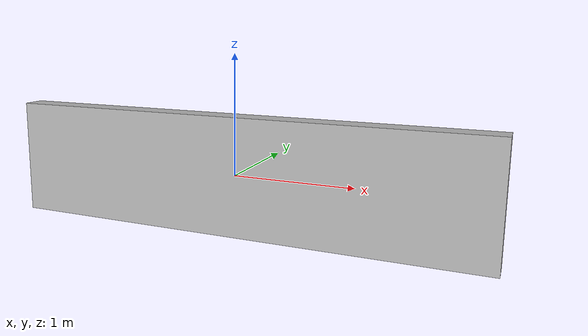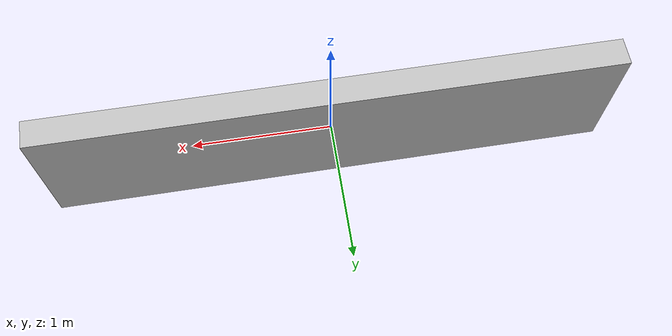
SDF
<?xml version='1.0'?>
<sdf version='1.6'>
  <model name='room_4_wall_bottom'>
    <static>true</static>
    <link name='link'>
      <collision name='collision'>
        <pose>0 0 0 0 0 0</pose>
        <geometry>
          <box>
            <size>4.14 0.2 1.0</size>
          </box>
        </geometry>
      </collision>
      <visual name='visual'>
        <pose>0 0 0 0 0 0</pose>
        <geometry>
          <box>
            <size>4.14 0.2 1.0</size>
          </box>
        </geometry>
      </visual>
    </link>
  </model>
</sdf>
